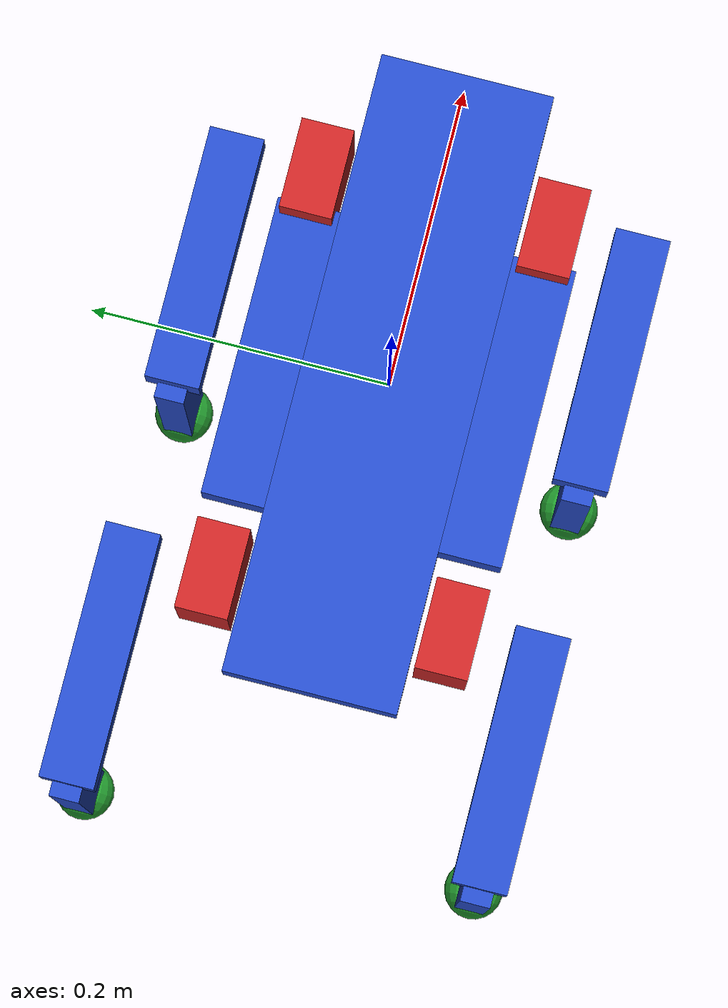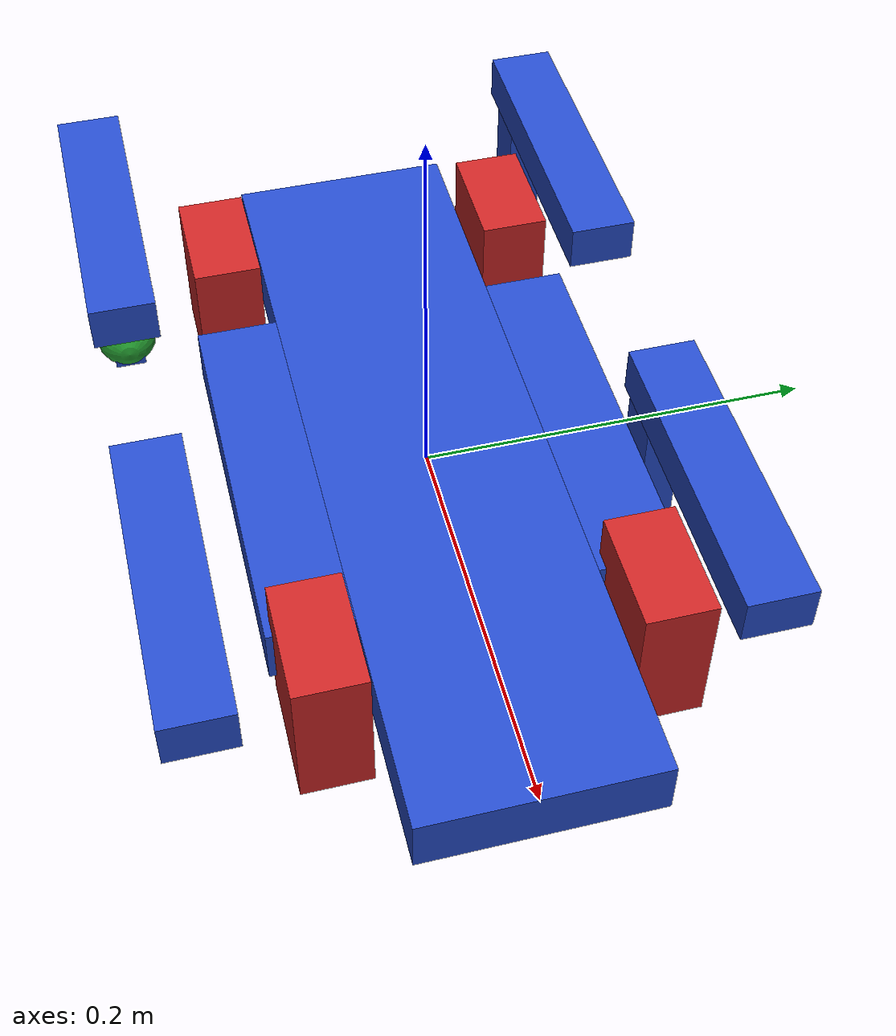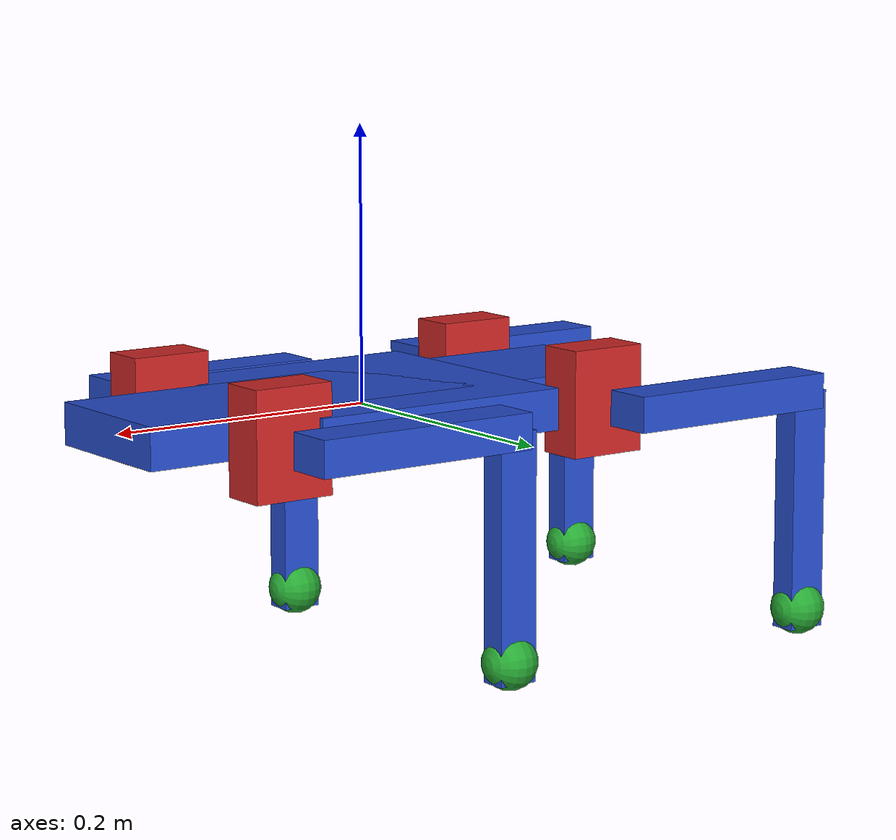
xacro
<?xml version='1.0'?>
<robot name="quadrus" xmlns:xacro="http://www.ros.org/wiki/xacro">

	<!-- Constants for robot dimensions, mass and inertia-->
	<xacro:property name="PI" value="3.1415926535897931"/>

	<xacro:property name="hip_offset" value="0.05755" />
	<xacro:property name="upperleg_length" value="0.140" />
	<xacro:property name="lowerleg_length" value="0.14833" />

	<xacro:property name="rear_hip_long_offset" value="-0.148" />
	<xacro:property name="hip_long_center_dist" value="0.268" />
	<xacro:property name="hip_lat_center_dist" value="0.158" />

	<!-- Import Rviz colors -->
	<xacro:include filename="$(find qd_simulation)/robot_description/materials.xacro" />
	<!-- Import all Gazebo-customization elements, including Gazebo colors -->
	<xacro:include filename="$(find qd_simulation)/robot_description/quadrus.gazebo" />

	<!-- Used for fixing robot to Gazebo 'base_link' -->

	<link name="base_link">
		<visual>
			<origin xyz="0 0 0" rpy="0 0 0" />
			<geometry>
				<box size="0.4172 0.116 0.03035"/>
			</geometry>
			<material name="blue" />
		</visual>

		<visual>
			<origin xyz="0 0 0" rpy="0 0 0" />
			<geometry>
				<box size="0.2 0.2 0.03035"/>
			</geometry>
			<material name="blue"/>
		</visual>

		<collision>
			<origin xyz="0 0 0" rpy="0 0 0" />
			<geometry>
				<box size="0.4172 0.116 0.03035"/>
			</geometry>
		</collision>

		<inertial>
			<mass value="0.800"/>
			<inertia ixx="0.00228" ixy="0.0" ixz="0.0" iyy="0.01125" iyz="0.0" izz="0.01326"/>
		</inertial>

	</link>

	<xacro:macro name="quadrus_leg" params="long lat id">
		<!-- Hip -->
			<xacro:property name="hip_joint_id" value="J${(id-1)*3+1}"/>

			<link name="link_${long}_${lat}_hip">
				<visual>
					<origin xyz="0 0 0" rpy="0 0 0" />
					<geometry>
						<box size="0.060 0.035 0.078"/>
					</geometry>
					<material name="red"/>
				</visual>

				<collision>
					<origin xyz="0 0 0" rpy="0 0 0" />
					<geometry>
						<box size="0.060 0.035 0.078"/>
					</geometry>
				</collision>

				<inertial>
					<mass value="0.37017"/>
					<origin xyz="0.00025 0.0063 0.04447"/>
					<inertia ixx="0.00114" ixy="0.0" ixz="0.0" iyy="0.0" iyz="0.0" izz="0.0"/>
				</inertial>

			</link>

			<joint name="${hip_joint_id}" type="continuous">
				<parent link="base_link"/>
				<child link="link_${long}_${lat}_hip"/>

				<xacro:if value="${long == 'front' and lat == 'left'}">
					<origin xyz="${rear_hip_long_offset+hip_long_center_dist} ${hip_lat_center_dist/2.0} 0" rpy="0 0 0" />
				</xacro:if>

				<xacro:if value="${long == 'front' and lat == 'right'}">
					<origin xyz="${rear_hip_long_offset+hip_long_center_dist} ${-hip_lat_center_dist/2.0} 0" rpy="0 0 0" />
				</xacro:if>

				<xacro:if value="${long == 'back' and lat == 'left'}">
					<origin xyz="${rear_hip_long_offset} ${hip_lat_center_dist/2.0} 0" rpy="0 0 0" />
				</xacro:if>

				<xacro:if value="${long == 'back' and lat == 'right'}">
					<origin xyz="${rear_hip_long_offset} ${-hip_lat_center_dist/2.0} 0" rpy="0 0 0" />
				</xacro:if>

				<axis xyz="1 0 0" />
			</joint>

			<transmission name="transmission_${long}_${lat}_hip">
				<type>transmission_interface/SimpleTransmission</type>
				<joint name="${hip_joint_id}">
					<hardwareInterface>hardware_interface/EffortJointInterface</hardwareInterface>
				</joint>
				<actuator name="motor_${long}_${lat}_hip">
					<mechanicalReduction>1</mechanicalReduction>
					<hardwareInterface>hardware_interface/EffortJointInterface</hardwareInterface>
				</actuator>
			</transmission>

			<gazebo reference="link_${long}_${lat}_hip">
				<material>Gazebo/Red</material>
			</gazebo>

		<!-- Upperleg -->
			<xacro:property name="upperleg_joint_id" value="J${(id-1)*3+2}"/>

			<link name="link_${long}_${lat}_upperleg">
				<visual>
					<origin xyz="-0.07 0 0" rpy="0 0 0" />
					<geometry>
						<box size="${upperleg_length+0.03} 0.0365 0.026"/>
					</geometry>
					<material name="blue"/>
				</visual>

				<collision>
					<origin xyz="-0.07 0 0" rpy="0 0 0" />
					<geometry>
						<box size="${upperleg_length+0.03}  0.0365 0.026"/>
					</geometry>
				</collision>

				<inertial>
					<mass value="0.35314"/>
					<origin xyz="-0.06146 -0.00199 0.00083"/>
					<inertia ixx="0.0" ixy="0.0" ixz="0.0" iyy="0.0" iyz="0.0" izz="0.0"/>
				</inertial>

			</link>

			<joint name="${upperleg_joint_id}" type="continuous">
				<parent link="link_${long}_${lat}_hip"/>
				<child link="link_${long}_${lat}_upperleg"/>

				<xacro:if value="${lat == 'left'}">
					<origin xyz="0 ${hip_offset} 0" rpy="0 0 0" />
				</xacro:if>

				<xacro:if value="${lat == 'right'}">
					<origin xyz="0 ${-hip_offset} 0" rpy="0 0 0" />
				</xacro:if>

				<axis xyz="0 1 0" />
			</joint>

			<transmission name="transmission_${long}_${lat}_upperleg">
				<type>transmission_interface/SimpleTransmission</type>
				<joint name="${upperleg_joint_id}">
					<hardwareInterface>hardware_interface/EffortJointInterface</hardwareInterface>
				</joint>
				<actuator name="motor_${long}_${lat}_upperleg">
					<mechanicalReduction>1</mechanicalReduction>
					<hardwareInterface>hardware_interface/EffortJointInterface</hardwareInterface>
				</actuator>
			</transmission>

			<gazebo reference="link_${long}_${lat}_upperleg">
				<material>Gazebo/White</material>
			</gazebo>

		<!-- LowerLeg -->
			<xacro:property name="lowerleg_joint_id" value="J${(id-1)*3+3}"/>

			<link name="link_${long}_${lat}_lowerleg">
				<visual>
					<origin xyz="0.075 0 0" rpy="0 0 0" />
					<geometry>
						<box size="${lowerleg_length+0.03} 0.02 0.03"/>
					</geometry>
					<material name="blue"/>
				</visual>

				<collision>
					<origin xyz="0.075 0 0" rpy="0 0 0" />
					<geometry>
						<box size="${lowerleg_length+0.03} 0.02 0.03"/>
					</geometry>
				</collision>

				<inertial>
					<origin xyz=" 0.05439 0.00478 0"/>
					<mass value="0.23649"/>
					<inertia ixx="0.0" ixy="0.0" ixz="0.0" iyy="0.0" iyz="0.0" izz="0.0"/>
				</inertial>

			</link>

			<joint name="${lowerleg_joint_id}" type="continuous">
				<parent link="link_${long}_${lat}_upperleg"/>
				<child link="link_${long}_${lat}_lowerleg"/>
				<origin xyz="-0.15 0 -0.0156" rpy="0 1.5708 0" />
				<axis xyz="0 1 0" />
			</joint>

			<transmission name="transmission_${long}_${lat}_lowerleg">
				<type>transmission_interface/SimpleTransmission</type>
				<joint name="${lowerleg_joint_id}">
					<hardwareInterface>hardware_interface/EffortJointInterface</hardwareInterface>
				</joint>
				<actuator name="motor_${long}_${lat}_lowerleg">
					<mechanicalReduction>1</mechanicalReduction>
					<hardwareInterface>hardware_interface/EffortJointInterface</hardwareInterface>
				</actuator>
			</transmission>

			<gazebo reference="link_${long}_${lat}_lowerleg">
				<material>Gazebo/White</material>
			</gazebo>

		<!-- Paw -->
			<link name="link_${long}_${lat}_paw">
				<visual>
					<origin xyz="0 0 0" rpy="0 0 0" />
					<geometry>
						<sphere radius = "0.02"/>
					</geometry>
					<material name="green"/>
				</visual>

				<collision>
					<origin xyz="0 0 0" rpy="0 0 0" />
					<geometry>
						<sphere radius = "0.02"/>
					</geometry>
				</collision>

				<inertial>
					<mass value="0.02"/>
					<inertia ixx="0.0" ixy="0.0" ixz="0.0" iyy="0.0" iyz="0.0" izz="0.0"/>
				</inertial>

			</link>

			<joint name="joint_${long}_${lat}_paw" type="fixed">
				<parent link="link_${long}_${lat}_lowerleg"/>
				<child link="link_${long}_${lat}_paw"/>
				<origin xyz="0.15 0 0" rpy="0 0 0" />
			</joint>

			<gazebo reference="link_${long}_${lat}_paw">
				<material>Gazebo/Green</material>
			</gazebo>

	</xacro:macro>

	<xacro:quadrus_leg long="front" lat="left" id="1"/>
	<xacro:quadrus_leg long="front" lat="right" id="2"/>
	<xacro:quadrus_leg long="back" lat="left" id="3"/>
	<xacro:quadrus_leg long="back" lat="right" id="4"/>

</robot>
